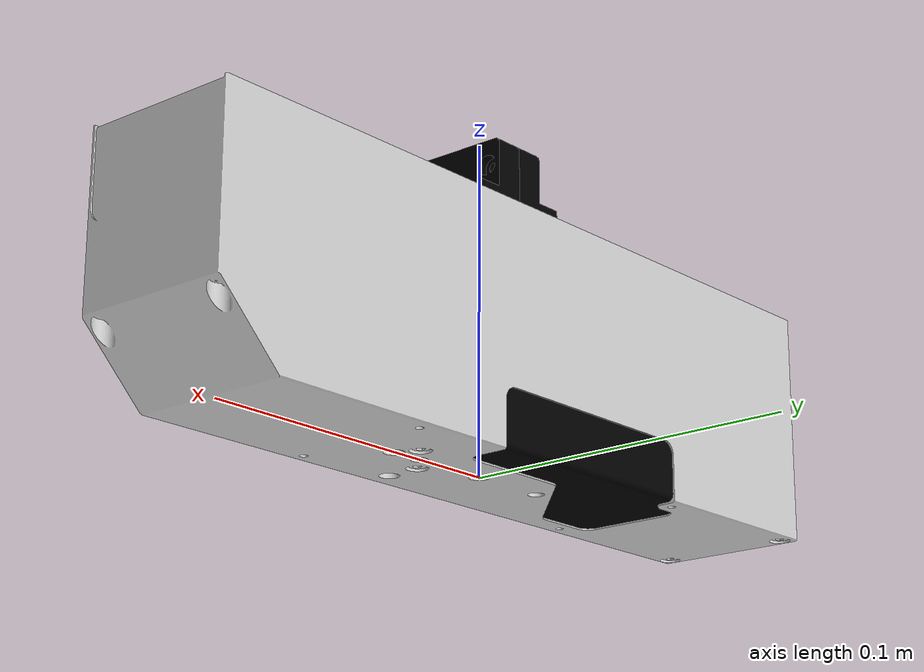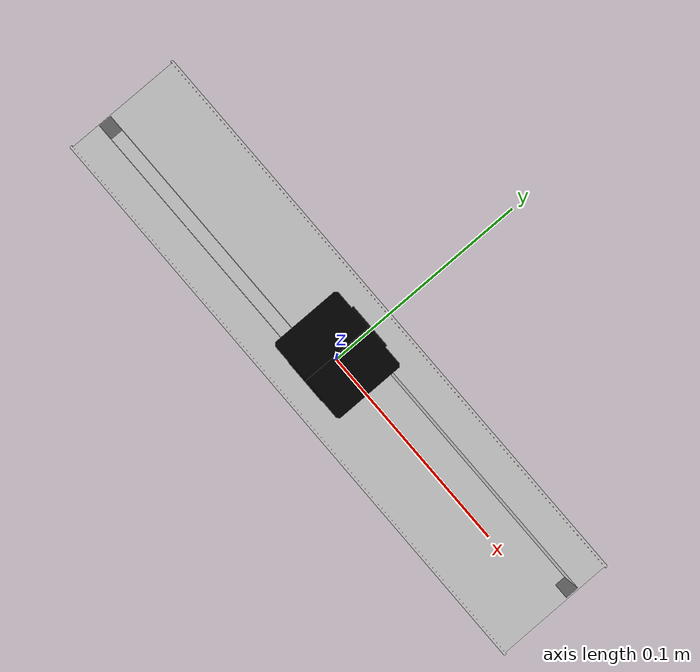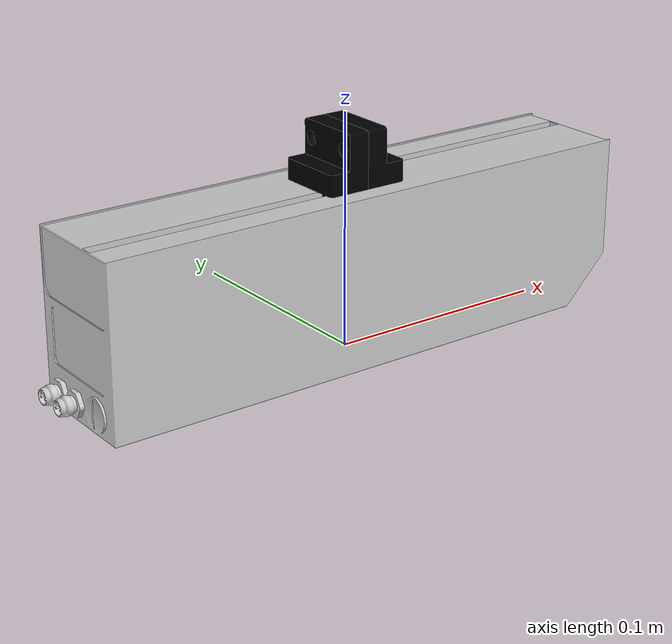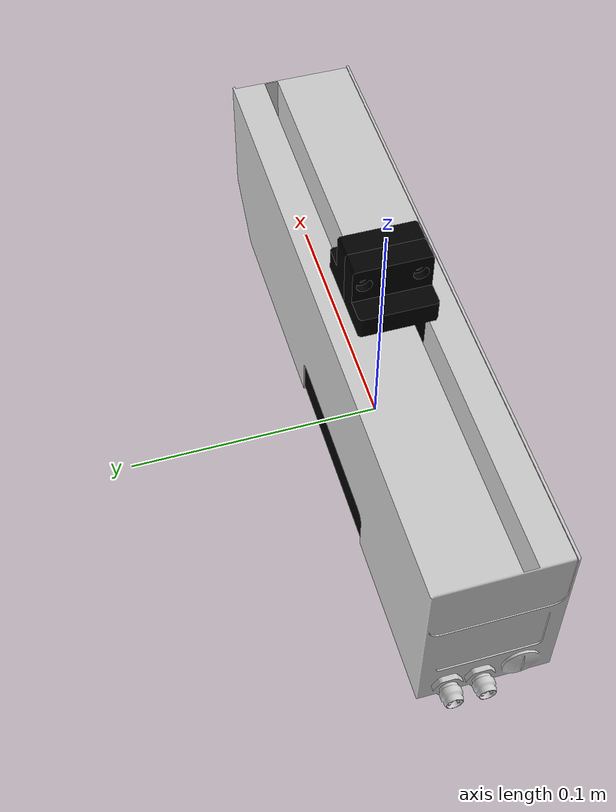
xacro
<?xml version="1.0"?>
<!--Generates a urdf from the macro in kr16_2_macro.xacro -->
<robot name="wsg50_210" xmlns:xacro="http://wiki.ros.org/xacro">

  <link name="world"/>

  <xacro:include filename="$(find wsg50_description)/urdf/wsg50_210_macro.urdf.xacro" />
  <xacro:wsg50_210 name="wsg50_210" parent="world">
      <origin xyz="0 0 0" rpy="0 0 0" />
  </xacro:wsg50_210>

</robot>

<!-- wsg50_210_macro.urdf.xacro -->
<robot  xmlns:xacro="http://wiki.ros.org/xacro">

  <xacro:macro name="wsg50_210" params="name parent *origin">

    <joint name="${name}_palm_joint" type="fixed">
        <xacro:insert_block name="origin"/>
        <parent link="${parent}"/>
        <child link="${name}_palm_link"/>
    </joint>

    <link name="${name}_palm_link">
      <inertial>
          <mass value="0.25" />
          <origin xyz="0 0 0" />
          <inertia  ixx="1.0" ixy="0.0"  ixz="0.0"  iyy="1.0"  iyz="0.0"  izz="1.0" />
      </inertial>
      <visual>
        <origin xyz="0 0 0" rpy="0 0 0" />
        <geometry>
            <mesh filename="package://wsg50_description/meshes/palm_210.dae" />
         </geometry>
      </visual>
      <visual>
        <origin xyz="0 0 0" rpy="0 0 0" />
        <geometry>
            <mesh filename="package://wsg50_description/meshes/black_plate.dae" />
         </geometry>
      </visual>
      <collision>
        <origin xyz="0 0 0" rpy="0 0 0" />
        <geometry>
            <mesh filename="package://wsg50_description/meshes/palm_210.stl" scale="0.001 0.001 0.001" />
        </geometry>
      </collision>
    </link>

    <joint name="${name}_finger_left_joint" type="prismatic" >
      <origin xyz="0 0 0.0719" rpy="0 0 0"/>
      <parent link="${name}_palm_link" />
      <child link="${name}_finger_left_link" />
      <axis xyz="1 0 0" />
      <limit effort="10" lower="0" upper="0.105" velocity="0.42"/>
    </joint>

    <link name="${name}_finger_left_link">
      <inertial>
          <mass value="0.25" />
          <origin xyz="0 0 0" />
          <inertia  ixx="1.0" ixy="0.0"  ixz="0.0"  iyy="1.0"  iyz="0.0"  izz="1.0" />
      </inertial>
      <visual>
        <origin xyz="0 0 0" rpy="0 0 0" />
        <geometry>
            <mesh filename="package://wsg50_description/meshes/finger.dae" />
         </geometry>
      </visual>
      <collision>
        <origin xyz="0 0 0" rpy="0 0 0" />
        <geometry>
            <mesh filename="package://wsg50_description/meshes/finger.stl" scale="0.001 0.001 0.001" />
        </geometry>
      </collision>
    </link>

    <joint name="${name}_finger_right_joint" type="prismatic" >
      <origin xyz="0 0 0.0719" rpy="0 0 ${pi}"/>
      <parent link="${name}_palm_link" />
      <child link="${name}_finger_right_link" />
      <axis xyz="1 0 0" />
      <limit effort="10" lower="0" upper="0.105" velocity="0.42"/>
      <mimic joint="${name}_finger_left_joint" multiplier="1" offset="0"/>
    </joint>

    <link name="${name}_finger_right_link">
      <inertial>
          <mass value="0.25" />
          <origin xyz="0 0 0" />
          <inertia  ixx="1.0" ixy="0.0"  ixz="0.0"  iyy="1.0"  iyz="0.0"  izz="1.0" />
      </inertial>
      <visual>
        <origin xyz="0 0 0" rpy="0 0 0" />
        <geometry>
            <mesh filename="package://wsg50_description/meshes/finger.dae" />
         </geometry>
      </visual>
      <collision>
        <origin xyz="0 0 0" rpy="0 0 0" />
        <geometry>
            <mesh filename="package://wsg50_description/meshes/finger.stl" scale="0.001 0.001 0.001" />
        </geometry>
      </collision>
    </link>

  </xacro:macro>
</robot>
